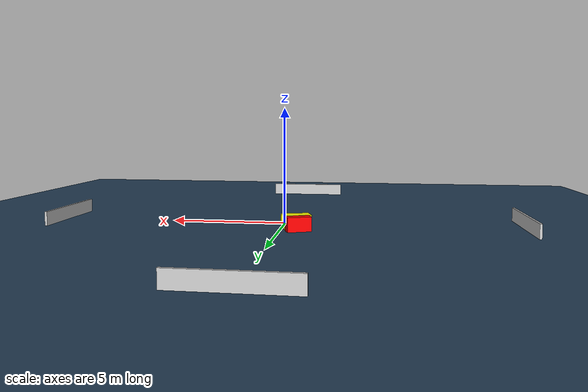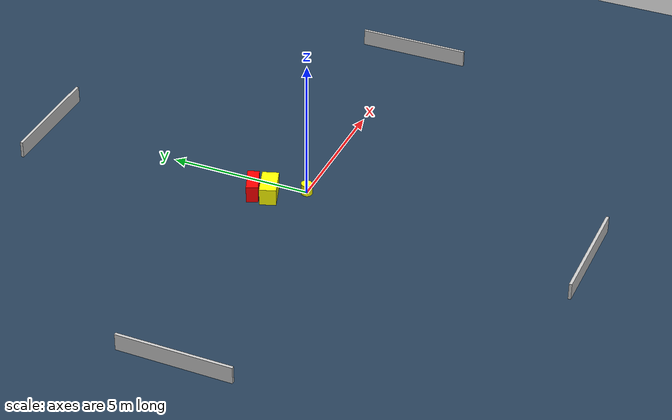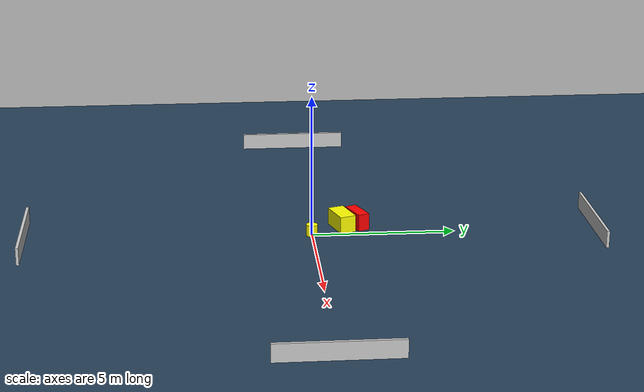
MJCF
<?xml version="1.0" ?>
<mujoco model="generated_environment">
  <option timestep="0.01" integrator="RK4" cone="elliptic"/>
  <default>
    <geom density="1"/>
  </default>
  <asset>
    <texture builtin="gradient" height="3072" name="skybox" rgb1="0.3 0.5 0.7" rgb2="0 0 0" type="skybox" width="512"/>
    <texture builtin="checker" height="300" name="groundplane" rgb1="0.2 0.3 0.4" rgb2="0.1 0.2 0.3" type="2d" width="300"/>
    <material name="groundplane" reflectance="0.2" texrepeat="5 5" texture="groundplane"/>
  </asset>
  <worldbody>
    <light dir="0 0 -1" directional="true" pos="0 0 1.5"/>
    <geom condim="3" friction="0.5 0.005 0.001" material="groundplane" name="floor" pos="0 0 0" size="0 0 0.05" type="plane"/>
    <body name="walls">
      <geom name="wall_1" condim="4" pos="-10.0 0.0 0.3" rgba="0.800000011920929 0.800000011920929 0.800000011920929 1.0" size="0.05 2.0 0.3" type="box"/>
      <geom name="wall_2" condim="4" pos="10.0 0.0 0.3" rgba="0.800000011920929 0.800000011920929 0.800000011920929 1.0" size="0.05 2.0 0.3" type="box"/>
      <geom name="wall_3" condim="4" pos="0.0 -10.0 0.3" rgba="0.800000011920929 0.800000011920929 0.800000011920929 1.0" size="2.0 0.05 0.3" type="box"/>
      <geom name="wall_4" condim="4" pos="0.0 10.0 0.3" rgba="0.800000011920929 0.800000011920929 0.800000011920929 1.0" size="2.0 0.05 0.3" type="box"/>
    </body>
    <body name="robot">
      <joint name="joint_x" type="slide" pos="0 0 0" axis="1 0 0"/>
      <joint name="joint_y" type="slide" pos="0 0 0" axis="0 1 0"/>
      <geom name="robot" type="cylinder" pos="0.0 0.0 0.2" size="0.2 0.2 0.0" mass="5.0" friction="1.0 0.005 0.0001" condim="4" rgba="1.0 1.0 0.0 1.0"/>
    </body>
    <body name="obstacle_1_movable">
      <geom name="obstacle_1_movable" condim="4" pos="-0.6563535731180234 1.1085538069965373 0.3" euler="0 0 108.78165474141917" friction="0.0 0.005 0.001" rgba="1.0 1.0 0.0 1.0" size="0.2910058764223586 0.5490641126682929 0.3" type="box" mass="0.1"/>
      <joint type="free"/>
    </body>
    <body name="obstacle_2_static">
      <geom name="obstacle_2_static" condim="4" pos="-0.7734548051428662 1.665202260622234 0.3" euler="0 0 21.91128137782598" friction="0.0 0.005 0.001" rgba="1.0 0.0 0.0 1.0" size="0.5032838340363042 0.20742423009948116 0.3" type="box"/>
    </body>
  </worldbody>
  <actuator>
    <motor name="actuator_x" joint="joint_x" gear="1" ctrlrange="-1 1"/>
    <motor name="actuator_y" joint="joint_y" gear="1" ctrlrange="-1 1"/>
  </actuator>
</mujoco>
